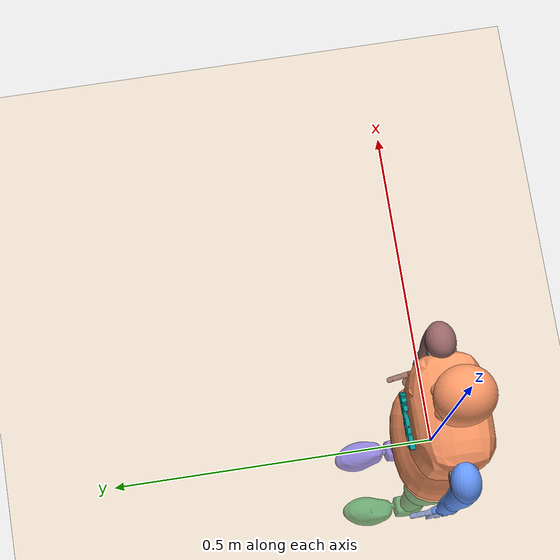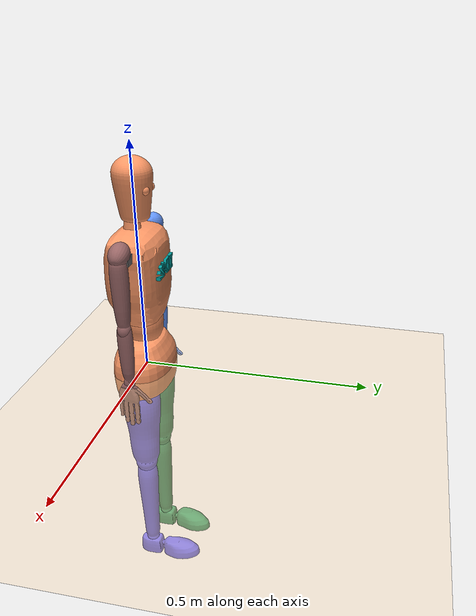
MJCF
<mujoco model="from_simulink">
  <compiler angle="degree"/>
  <option gravity="0 0 0"/>

<asset>
  <mesh name="root_BP" file="stl/root_bp.stl"/>
  <mesh name="Spine_BT" file="stl/spine_bt.stl"/>
  <mesh name="la_segment" file="stl/la_segment.stl"/>
  <mesh name="lesegment" file="stl/lesegmentSTL.stl"/>
  <mesh name="lfoot" file="stl/lfoot.stl"/>
  <mesh name="rfoot" file="stl/rfoot.stl"/>
  <mesh name="lk_segment" file="stl/lk_segment.stl"/>
  <mesh name="lwsegment" file="stl/lwsegment.stl"/>
  <mesh name="lefthand_solid" file="stl/lefthand_solid.stl"/>
  <mesh name="leftshoulder_ls" file="stl/leftshoulder_ls.stl"/>
  <mesh name="neck_bun" file="stl/neck_bun.stl"/>
  <mesh name="RightHand_solid" file="stl/RightHand_solid.stl"/>
  <mesh name="rightshoulder_rs" file="stl/rightshoulder_rs.stl"/>
  <mesh name="torso_collar" file="stl/torso_collar.stl"/>
  <mesh name="Torso_KIT_solid" file="stl/Torso_KIT_solid.stl"/>
  <mesh name="eyes_mm" file="stl/eyes_mm.stl"/>
  <mesh name="head_headjoint" file="stl/head_headjoint.stl"/>
</asset>

<worldbody>
    <!-- Lighting and environment -->
    <light directional="true" pos="-0.5 0.5 3" dir="0 0 -1" />
    <geom name="floor" pos="0 0 0" size="1 1 1" type="plane" rgba="1 0.83 0.61 0.5" contype="0" conaffinity="0"/>
    <body name="base" pos="0 0 0">

        <!-- Cartesian Joint -->
        <joint name="cart_x" type="slide" damping="50" axis="1 0 0"/>
        <joint name="cart_y" type="slide" damping="50" axis="0 1 0"/>
        <joint name="cart_z" type="slide" damping="50" axis="0 0 1"/>

        <!-- Gimbal Joint -->
        <joint name="gimbal_x" type="hinge" damping="0.1" axis="1 0 0"/>
        <joint name="gimbal_y" type="hinge" damping="0.1" axis="0 1 0"/>
        <joint name="gimbal_z" type="hinge" damping="0.1" axis="0 0 1"/>

        <!-- Left Leg -->
        <body name="lh_base" pos="-0.052 0 0">
            <geom name="lh_dummy_mass" type="box" size=".02 .02 .01" rgba=".5 .5 .5 1" contype="0" conaffinity="0"/>
            <body>
                <!-- Gimbal Joint: LH_joint -->
                <joint name="LH_x" type="hinge" axis="1 0 0" damping="0.1"/>
                <joint name="LH_z" type="hinge" axis="0 0 1" damping="0.1"/>
                <joint name="LH_y" type="hinge" axis="0 1 0" damping="0.1"/>

                <body name="lk_segment" pos="0 0 -0.245">
                    <geom type="mesh" mesh="lk_segment" rgba="0.2 0.6 0.4 1" contype="0" conaffinity="0"/>
                    <body>
                        <!-- Gimbal Joint: LK_joint -->
                        <joint name="LK_x" type="hinge" axis="1 0 0" damping="0.1"/>
                        <joint name="LK_z" type="hinge" axis="0 0 1" damping="0.1"/>
                        <joint name="LK_y" type="hinge" axis="0 1 0" damping="0.1"/>

                        <body name="la_segment" pos="0 0 -0.246">
                            <geom type="mesh" mesh="la_segment" rgba="0.2 0.6 0.4 1" contype="0" conaffinity="0"/>
                            <body>
                                <!-- Gimbal Joint: LA_joint -->
                                <joint name="LA_x" type="hinge" axis="1 0 0" damping="0.1"/>
                                <joint name="LA_z" type="hinge" axis="0 0 1" damping="0.1"/>
                                <joint name="LA_y" type="hinge" axis="0 1 0" damping="0.1"/>

                                <geom type="mesh" mesh="lfoot" rgba="0.2 0.6 0.4 1" contype="0" conaffinity="0"/>
                            </body>
                        </body>
                    </body>
                </body>
            </body>
        </body>

        <!-- Right Leg -->
        <body name="rh_base" pos="0.052 0 0">
            <geom name="rh_dummy_mass" type="box" size=".02 .02 .01" rgba=".5 .5 .5 1" contype="0" conaffinity="0"/>

            <body>
                <!-- Gimbal Joint: RH_joint -->
                <joint name="RH_x" type="hinge" axis="1 0 0" damping="0.1"/>
                <joint name="RH_z" type="hinge" axis="0 0 1" damping="0.1"/>
                <joint name="RH_y" type="hinge" axis="0 1 0" damping="0.1"/>

                <body name="rk_segment" pos="0 0 -0.245">
                    <geom type="mesh" mesh="lk_segment" rgba="0.4 0.4 1 1" contype="0" conaffinity="0"/>

                    <body>
                        <!-- Gimbal Joint: RK_joint -->
                        <joint name="RK_x" type="hinge" axis="1 0 0" damping="0.1"/>
                        <joint name="RK_z" type="hinge" axis="0 0 1" damping="0.1"/>
                        <joint name="RK_y" type="hinge" axis="0 1 0" damping="0.1"/>

                        <body name="ra_segment" pos="0 0 -0.246">
                            <geom type="mesh" mesh="la_segment" rgba="0.4 0.4 1 1" contype="0" conaffinity="0"/>
                            <body>
                                <!-- Gimbal Joint: RA_joint -->
                                <joint name="RA_x" type="hinge" axis="1 0 0" damping="0.1"/>
                                <joint name="RA_z" type="hinge" axis="0 0 1" damping="0.1"/>
                                <joint name="RA_y" type="hinge" axis="0 1 0" damping="0.1"/>

                                <geom type="mesh" mesh="rfoot" rgba="0.4 0.4 1 1" contype="0" conaffinity="0"/>
                            </body>
                        </body>
                    </body>
                </body>
            </body>
        </body>

        <!-- bp geometry -->
        <body name="bp_segment" pos="0 0 0.04">
            <geom type="mesh" mesh="root_BP" rgba="1 0.6 0.4 1" contype="0" conaffinity="0"/>

            <body name="BP_joint_body">
                <!-- Joint X -->
                <joint name="BP_x" type="hinge" damping="0.1" axis="1 0 0" limited="true" range="-90 90"/>
                <!-- Joint Z -->
                <joint name="BP_z" type="hinge" damping="0.1" axis="0 0 1" limited="true" range="-90 90"/>
                <!-- Joint Y -->
                <joint name="BP_y" type="hinge" damping="0.1" axis="0 1 0" limited="true" range="-90 90"/>
                <body name="bt_segment" pos="0 0 0.06">
                    <geom type="mesh" mesh="Spine_BT" rgba="1 0.6 0.4 1" contype="0" conaffinity="0"/>
                    <body name="BT_joint_body">
                        <!-- Gimbal Joint: BT -->
                        <joint name="BT_x" type="hinge" damping="0.1" axis="1 0 0"/>
                        <joint name="BT_z" type="hinge" damping="0.1" axis="0 0 1"/>
                        <joint name="BT_y" type="hinge" damping="0.1" axis="0 1 0"/>

                        <!-- Geometrie: TorsoKIT -->
                        <geom type="mesh" mesh="Torso_KIT_solid" rgba="0 0.6 0.6 1" contype="0" conaffinity="0"/>

                        <!-- Collar-Transformation -->

                        <body name="collar_frame" pos="0 0 0.188">
                            <!-- Geometrie: TorsoCollar -->
                            <geom type="mesh" mesh="torso_collar" rgba="1 0.6 0.4 1" contype="0" conaffinity="0"/>

                            <!-- Linker Arm (abzweigend von TorsoCollar) -->
                            <body name="lsc_segment" pos="-0.087 0 0">
                                <!-- Gimbal Joint: LSC -->
                                <joint name="LSC_x" type="hinge" axis="1 0 0" damping="0.1"/>
                                <joint name="LSC_z" type="hinge" axis="0 0 1" damping="0.1"/>
                                <joint name="LSC_y" type="hinge" axis="0 1 0" damping="0.1"/>
                                <geom name="lsc_segment_dummy_mass" type="box" size=".02 .02 .01" rgba=".5 .5 .5 1" contype="0" conaffinity="0"/>

                                <body name="ls_segment" pos="-0.023 0 0">
                                    <geom type="mesh" mesh="leftshoulder_ls" rgba="0.4 0.6 1 1" contype="0" conaffinity="0"/>
                                    <body>
                                        <!-- Gimbal Joint: LS -->
                                        <joint name="LS_x" type="hinge" axis="1 0 0" damping="0.1"/>
                                        <joint name="LS_z" type="hinge" axis="0 0 1" damping="0.1"/>
                                        <joint name="LS_y" type="hinge" axis="0 1 0" damping="0.1"/>

                                        <body name="le_segment" pos="0 0 -0.151">
                                            <geom type="mesh" mesh="lesegment" rgba="0.4 0.6 1 1" contype="0" conaffinity="0"/>
                                            <body>
                                                <!-- Gimbal Joint: LE -->
                                                <joint name="LE_x" type="hinge" axis="1 0 0" damping="0.1"/>
                                                <joint name="LE_z" type="hinge" axis="0 0 1" damping="0.1"/>
                                                <joint name="LE_y" type="hinge" axis="0 1 0" damping="0.1"/>

                                                <body name="lw_segment" pos="0 0 -0.129">
                                                    <geom type="mesh" mesh="lwsegment" rgba="0.4 0.6 1 1" contype="0" conaffinity="0"/>
                                                    <body>

                                                        <!-- Gimbal Joint: LW -->
                                                        <joint name="LW_x" type="hinge" axis="1 0 0" damping="0.1"/>
                                                        <joint name="LW_z" type="hinge" axis="0 0 1" damping="0.1"/>
                                                        <joint name="LW_y" type="hinge" axis="0 1 0" damping="0.1"/>

                                                        <geom type="mesh" mesh="lefthand_solid" rgba="0.4 0.6 1 1" contype="0" conaffinity="0"/>
                                                    </body>
                                                </body>
                                            </body>
                                        </body>
                                    </body>
                                </body>
                            </body>

                            <!-- Rechter Arm (abzweigend von TorsoCollar) -->
                            <body name="rsc_segment" pos="0.087 0 0">
                            <!-- Gimbal Joint: RSC -->
                            <joint name="RSC_x" type="hinge" axis="1 0 0" damping="0.1"/>
                            <joint name="RSC_z" type="hinge" axis="0 0 1" damping="0.1"/>
                            <joint name="RSC_y" type="hinge" axis="0 1 0" damping="0.1"/>
                            <geom name="rsc_segment_dummy_mass" type="box" size=".02 .02 .01" rgba=".5 .5 .5 1" contype="0" conaffinity="0"/>

                            <body name="rs_segment" pos="0.023 0 0">
                                <geom type="mesh" mesh="rightshoulder_rs" rgba="0.6 0.4 0.4 1" contype="0" conaffinity="0"/>
                                <body>
                                <!-- Gimbal Joint: RS -->
                                <joint name="RS_x" type="hinge" axis="1 0 0" damping="0.1"/>
                                <joint name="RS_z" type="hinge" axis="0 0 1" damping="0.1"/>
                                <joint name="RS_y" type="hinge" axis="0 1 0" damping="0.1"/>

                                <body name="re_segment" pos="0 0 -0.151">
                                    <geom type="mesh" mesh="lesegment" rgba="0.6 0.4 0.4 1" contype="0" conaffinity="0"/>
                                    <body>
                                    <!-- Gimbal Joint: RE -->
                                    <joint name="RE_x" type="hinge" axis="1 0 0" damping="0.1"/>
                                    <joint name="RE_z" type="hinge" axis="0 0 1" damping="0.1"/>
                                    <joint name="RE_y" type="hinge" axis="0 1 0" damping="0.1"/>

                                    <body name="rw_segment" pos="0 0 -0.129">
                                        <geom type="mesh" mesh="lwsegment" rgba="0.6 0.4 0.4 1" contype="0" conaffinity="0"/>
                                        <body>
                                        <!-- Gimbal Joint: RW -->
                                        <joint name="RW_x" type="hinge" axis="1 0 0" damping="0.1"/>
                                        <joint name="RW_z" type="hinge" axis="0 0 1" damping="0.1"/>
                                        <joint name="RW_y" type="hinge" axis="0 1 0" damping="0.1"/>

                                        <geom type="mesh" mesh="RightHand_solid" rgba="0.6 0.4 0.4 1" contype="0" conaffinity="0"/>
                                        </body>
                                    </body>
                                    </body>
                                </body>
                                </body>
                            </body>
                            </body>

                            <!-- Kopf -->
                            <!-- Gimbal Joint: BLN -->
                            <body name="bln_joint_body" pos="0 0 0.022">
                                <joint name="BLN_x" type="hinge" damping="0.1" axis="1 0 0"/>
                                <joint name="BLN_z" type="hinge" damping="0.1" axis="0 0 1"/>
                                <joint name="BLN_y" type="hinge" damping="0.1" axis="0 1 0"/>

                                <!-- Geometrie: NeckBUN -->
                                <body name="bun_segment" pos="0 0 0.03">
                                    <geom type="mesh" mesh="neck_bun" rgba="1 0.6 0.4 1" contype="0" conaffinity="0"/>

                                    <!-- Gimbal Joint: BUN -->
                                    <body name="BUN_joint_body">
                                        <joint name="BUN_x" type="hinge" damping="0.1" axis="1 0 0" />
                                        <joint name="BUN_z" type="hinge" damping="0.1" axis="0 0 1"/>
                                        <joint name="BUN_y" type="hinge" damping="0.1" axis="0 1 0"/>

                                        <!-- Augen -->
                                        <geom type="mesh" mesh="eyes_mm" rgba="1 0.6 0.4 1" contype="0" conaffinity="0"/>

                                        <!-- Kopf -->
                                        <body name="head_segment" pos="0 0 0.13">
                                            <geom type="mesh" mesh="head_headjoint" rgba="1 0.6 0.4 1" contype="0" conaffinity="0"/>
                                        </body>
                                    </body>
                                </body>
                            </body>
                        </body>
                    </body>
                </body>
            </body>
        </body>
    </body>
  </worldbody>

  <actuator>
    <!-- cart Joint:  -->
    <position  name="cart_x" joint="cart_x" ctrlrange="-1 1"  kp="200"/>
    <position  name="cart_y" joint="cart_y" ctrlrange="-1 1"  kp="200"/>
    <position  name="cart_z" joint="cart_z" ctrlrange="-1 1"  kp="200"/>

    <!-- Gimbal Joint: gimbal -->
    <position  name="gimbal_x" joint="gimbal_x" ctrlrange="-1 1"  kp="100"/>
    <position  name="gimbal_y" joint="gimbal_y" ctrlrange="-1 1"  kp="100"/>
    <position  name="gimbal_z" joint="gimbal_z" ctrlrange="-1 1"  kp="100"/>

    <!-- Gimbal Joint: BP -->
    <position  name="BP_x" joint="BP_x" ctrlrange="-1 1"  kp="100"/>
    <position  name="BP_y" joint="BP_z" ctrlrange="-1 1"  kp="100"/>
    <position  name="BP_z" joint="BP_y" ctrlrange="-1 1"  kp="100"/>

    <!-- Gimbal Joint: BT -->
    <position  name="BT_x" joint="BT_x" ctrlrange="-1 1"  kp="100"/>
    <position  name="BT_y" joint="BT_z" ctrlrange="-1 1"  kp="100"/>
    <position  name="BT_z" joint="BT_y" ctrlrange="-1 1"  kp="100"/>

    <!-- Gimbal Joint: BLN -->
    <position  name="BLN_x" joint="BLN_x" ctrlrange="-1 1"  kp="10"/>
    <position  name="BLN_y" joint="BLN_z" ctrlrange="-1 1"  kp="10"/>
    <position  name="BLN_z" joint="BLN_y" ctrlrange="-1 1"  kp="10"/>

    <!-- Gimbal Joint: BUN -->
    <position  name="BUN_x" joint="BUN_x" ctrlrange="-1 1"  kp="10"/>
    <position  name="BUN_y" joint="BUN_z" ctrlrange="-1 1"  kp="10"/>
    <position  name="BUN_z" joint="BUN_y" ctrlrange="-1 1"  kp="10"/>

        <!-- Gimbal Joint: LSC -->
    <position name="LSC_x" joint="LSC_x" ctrlrange="-1 1" kp="10"/>
    <position name="LSC_z" joint="LSC_z" ctrlrange="-1 1" kp="10"/>
    <position name="LSC_y" joint="LSC_y" ctrlrange="-1 1" kp="10"/>

    <!-- Gimbal Joint: LS -->
    <position name="LS_x" joint="LS_x" ctrlrange="-1 1" kp="10"/>
    <position name="LS_z" joint="LS_z" ctrlrange="-1 1" kp="10"/>
    <position name="LS_y" joint="LS_y" ctrlrange="-1 1" kp="10"/>

    <!-- Gimbal Joint: LE -->
    <position name="LE_x" joint="LE_x" ctrlrange="-1 1" kp="10"/>
    <position name="LE_z" joint="LE_z" ctrlrange="-1 1" kp="10"/>
    <position name="LE_y" joint="LE_y" ctrlrange="-1 1" kp="10"/>

    <!-- Gimbal Joint: LW -->
    <position name="LW_x" joint="LW_x" ctrlrange="-1 1" kp="10"/>
    <position name="LW_z" joint="LW_z" ctrlrange="-1 1" kp="10"/>
    <position name="LW_y" joint="LW_y" ctrlrange="-1 1" kp="10"/>

    <!-- Gimbal Joint: LH (Hüfte links) -->
    <position name="LH_x" joint="LH_x" ctrlrange="-1 1" kp="50"/>
    <position name="LH_z" joint="LH_z" ctrlrange="-1 1" kp="50"/>
    <position name="LH_y" joint="LH_y" ctrlrange="-1 1" kp="50"/>

    <!-- Gimbal Joint: LK (Knie links) -->
    <position name="LK_x" joint="LK_x" ctrlrange="-1 1" kp="50"/>
    <position name="LK_z" joint="LK_z" ctrlrange="-1 1" kp="50"/>
    <position name="LK_y" joint="LK_y" ctrlrange="-1 1" kp="50"/>

    <!-- Gimbal Joint: LA (Sprunggelenk/Fuß links) -->
    <position name="LA_x" joint="LA_x" ctrlrange="-1 1" kp="30"/>
    <position name="LA_z" joint="LA_z" ctrlrange="-1 1" kp="30"/>
    <position name="LA_y" joint="LA_y" ctrlrange="-1 1" kp="30"/>

</actuator>
</mujoco>
